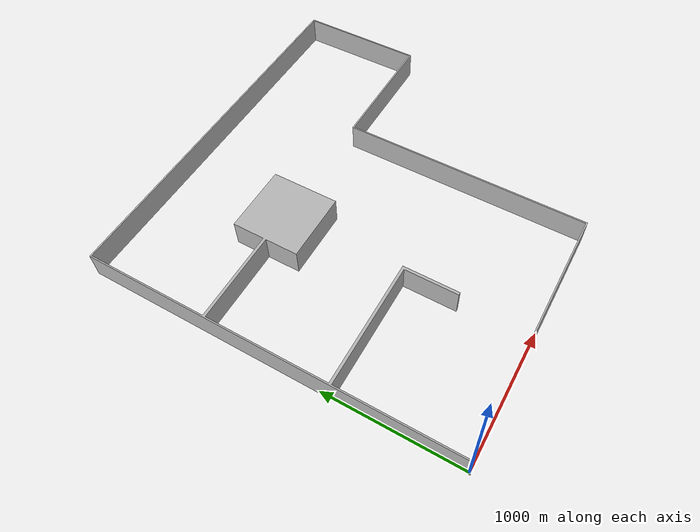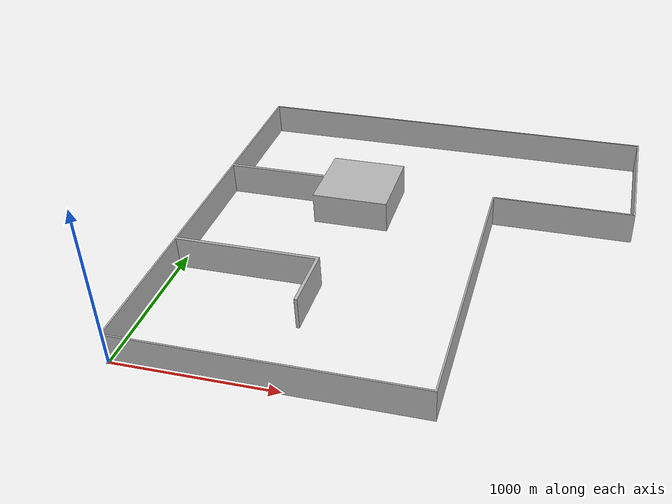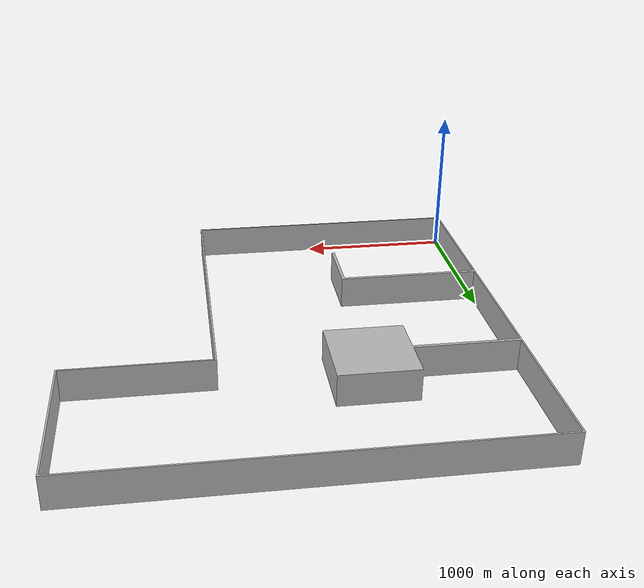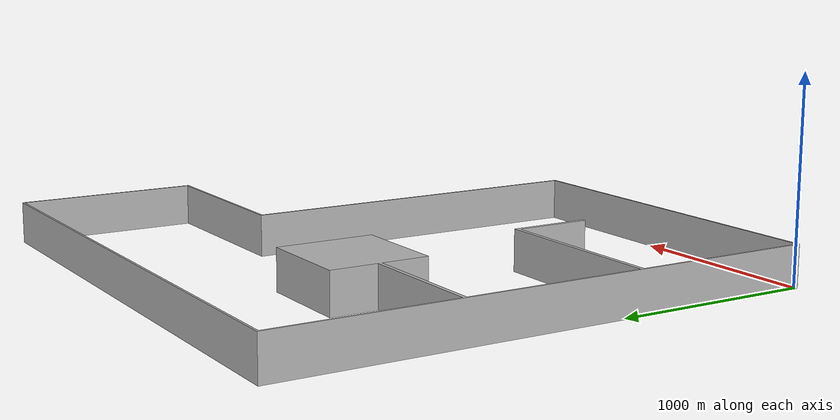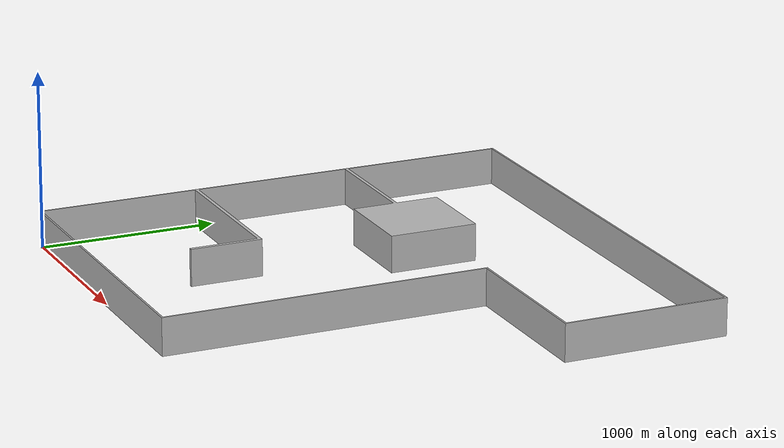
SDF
<?xml version="1.0" ?>
<sdf version="1.6">
  <model name="my_map">
    <static>true</static>
    <link name="link">

      <visual name="visual">
        <geometry>
          <mesh>
            <uri>model://middle/meshes/middle.dae</uri>
            <scale>1 1 1</scale>
          </mesh>
        </geometry>
      </visual>

      <collision name="collision">
        <geometry>
          <mesh>
            <uri>model://middle/meshes/middle.dae</uri>
            <scale>1 1 1</scale>
          </mesh>
        </geometry>

        <surface>
          <friction>
            <ode>
              <mu>1.0</mu>
              <mu2>1.0</mu2>
            </ode>
          </friction>
        </surface>
      </collision>

    </link>
  </model>
</sdf>
